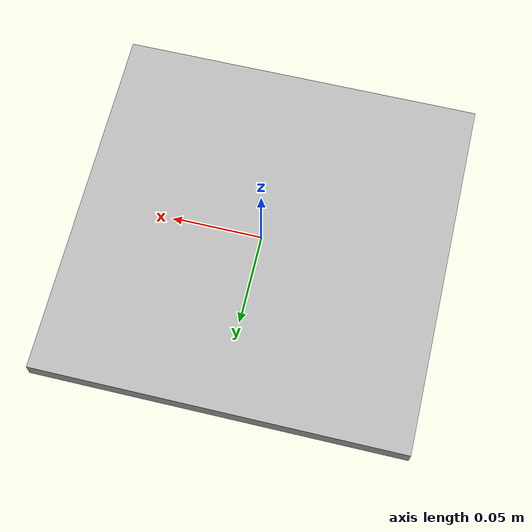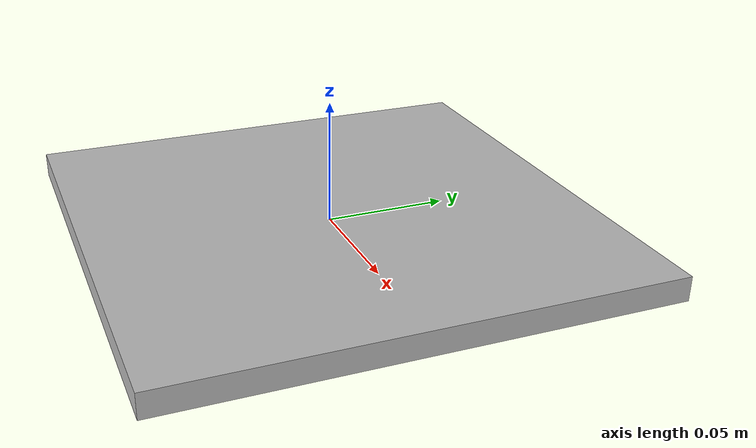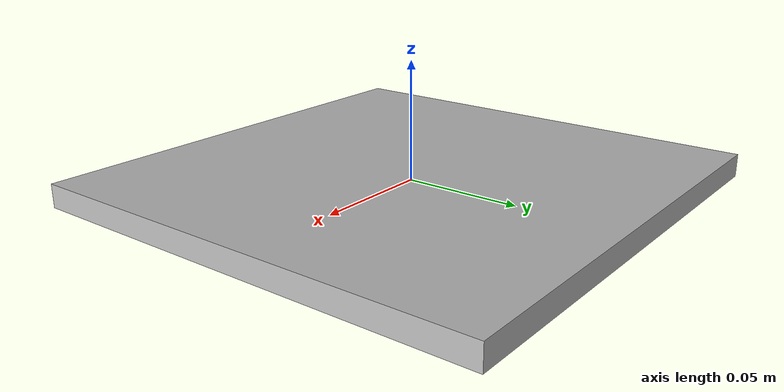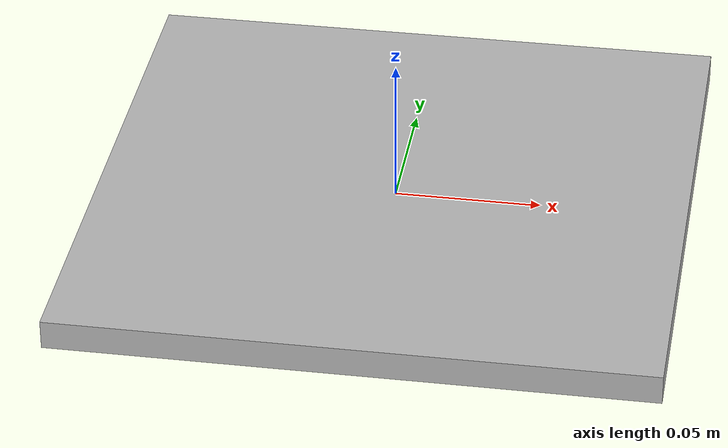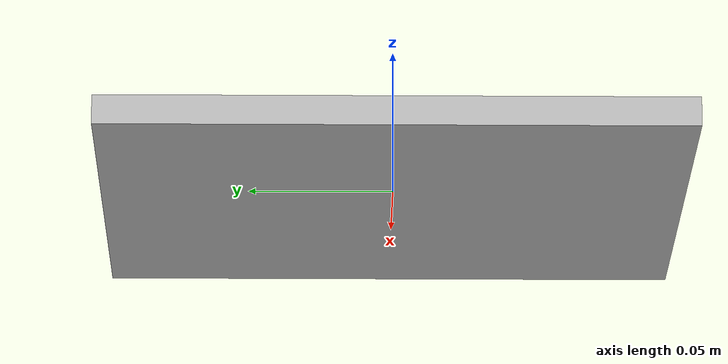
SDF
<?xml version='1.0'?>
<sdf version='1.6'>
  <model name='Apriltag16_05_00007'>
    <link name='main'>
    <pose frame=''>0 0 0 0 0 0</pose>
      <visual name='main_Visual'>
        <geometry>
          <box>
            <!-- We want tag size 0.151, but the 1024 px texture has 256 px white border, so we set size to 0.151 * 4 / 3. -->
            <size>0.20133333 0.20133333 0.01</size>
          </box>
        </geometry>
           <material>
          <script>
            <uri>model://Apriltag16_05_00007/materials/scripts</uri>
            <uri>model://Apriltag16_05_00007/materials/textures</uri>
            <name>Apriltag16_05_00007</name>
          </script>
        </material>
      </visual>
     </link>
    <static>1</static>
  </model>
</sdf>
